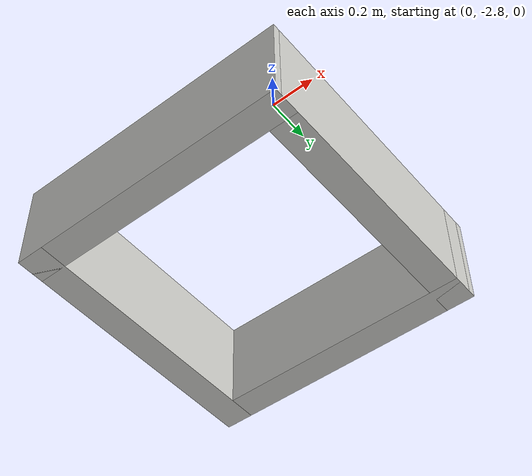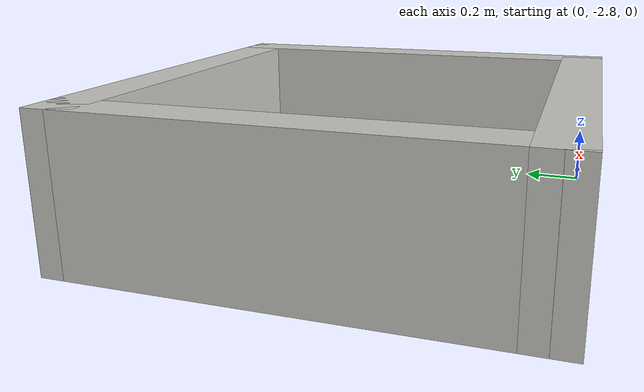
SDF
<?xml version='1.0'?>
<sdf version='1.7'>
  <model name='depo_area'>
    <pose>-0.692038 -1.42954 0 0 -0 0</pose>
    <link name='Wall_0'>
      <collision name='Wall_0_Collision'>
        <geometry>
          <box>
            <size>1.5 0.15 0.5</size>
          </box>
        </geometry>
        <pose>0 0 0.25 0 -0 0</pose>
      </collision>
      <visual name='Wall_0_Visual'>
        <pose>0 0 0.25 0 -0 0</pose>
        <geometry>
          <box>
            <size>1.5 0.15 0.5</size>
          </box>
        </geometry>
        <material>
          <script>
            <uri>file://media/materials/scripts/gazebo.material</uri>
            <name>Gazebo/CeilingTiled</name>
          </script>
          <ambient>1 1 1 1</ambient>
        </material>
        <meta>
          <layer>0</layer>
        </meta>
      </visual>
      <pose>-0.675 -0.6795 0 0 -0 1.57074</pose>
    </link>
    <link name='Wall_1'>
      <collision name='Wall_1_Collision'>
        <geometry>
          <box>
            <size>1.5 0.15 0.5</size>
          </box>
        </geometry>
        <pose>0 0 0.25 0 -0 0</pose>
      </collision>
      <visual name='Wall_1_Visual'>
        <pose>0 0 0.25 0 -0 0</pose>
        <geometry>
          <box>
            <size>1.5 0.15 0.5</size>
          </box>
        </geometry>
        <material>
          <script>
            <uri>file://media/materials/scripts/gazebo.material</uri>
            <name>Gazebo/CeilingTiled</name>
          </script>
          <ambient>1 1 1 1</ambient>
        </material>
        <meta>
          <layer>0</layer>
        </meta>
      </visual>
      <pose>3.8e-05 -0.004462 0 0 -0 0</pose>
    </link>
    <link name='Wall_2'>
      <collision name='Wall_2_Collision'>
        <geometry>
          <box>
            <size>1.5 0.15 0.5</size>
          </box>
        </geometry>
        <pose>0 0 0.25 0 -0 0</pose>
      </collision>
      <visual name='Wall_2_Visual'>
        <pose>0 0 0.25 0 -0 0</pose>
        <geometry>
          <box>
            <size>1.5 0.15 0.5</size>
          </box>
        </geometry>
        <material>
          <script>
            <uri>file://media/materials/scripts/gazebo.material</uri>
            <name>Gazebo/CeilingTiled</name>
          </script>
          <ambient>1 1 1 1</ambient>
        </material>
        <meta>
          <layer>0</layer>
        </meta>
      </visual>
      <pose>0.675 -0.6795 0 0 -0 -1.57085</pose>
    </link>
    <link name='Wall_3'>
      <collision name='Wall_3_Collision'>
        <geometry>
          <box>
            <size>1.5 0.15 0.5</size>
          </box>
        </geometry>
        <pose>0 0 0.25 0 -0 0</pose>
      </collision>
      <visual name='Wall_3_Visual'>
        <pose>0 0 0.25 0 -0 0</pose>
        <geometry>
          <box>
            <size>1.5 0.15 0.5</size>
          </box>
        </geometry>
        <material>
          <script>
            <uri>file://media/materials/scripts/gazebo.material</uri>
            <name>Gazebo/CeilingTiled</name>
          </script>
          <ambient>1 1 1 1</ambient>
        </material>
        <meta>
          <layer>0</layer>
        </meta>
      </visual>
      <pose>-3.8e-05 -1.35454 0 0 -0 3.14159</pose>
    </link>
    <static>1</static>
  </model>
</sdf>
